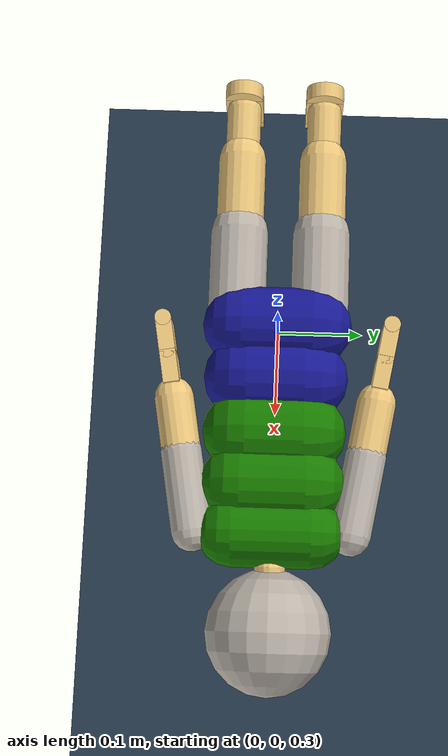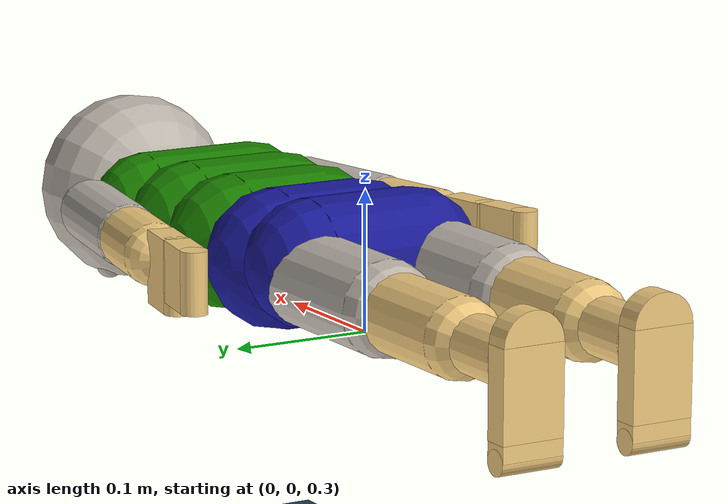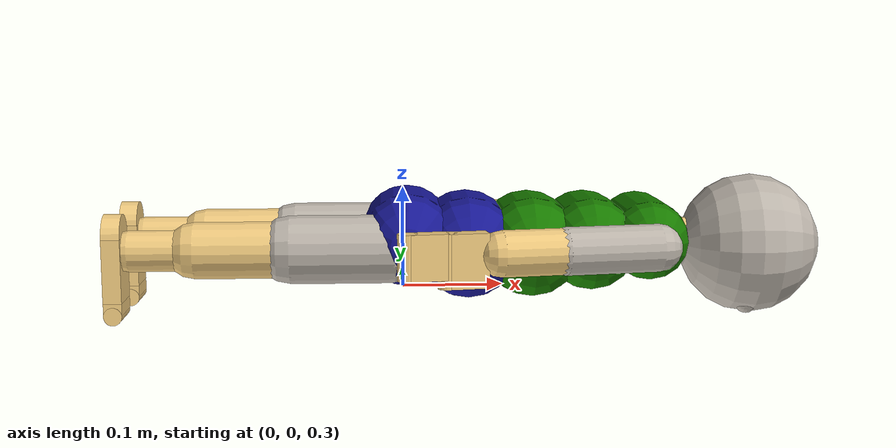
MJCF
<mujoco model="MIMo">

    <compiler inertiafromgeom="true" angle="degree"/>
    <option timestep="0.005" iterations="50" tolerance="1e-10" solver="Newton" jacobian="dense" cone="elliptic" impratio="1.0"/>
    <size nconmax="1000" njmax="5000" nstack="10000000" nuser_cam="3"/>

    <visual>
        <map force="0.1" zfar="30" znear="0.005"/>
        <rgba haze="0.15 0.25 0.35 1"/>
        <quality shadowsize="4096"/>
        <global offwidth="800" offheight="800"/>
    </visual>

    <asset>

        <texture type="skybox" builtin="gradient" rgb1="0.3 0.5 0.7" rgb2="0 0 0" width="512" height="512"/>

        <texture name="texplane" type="2d" builtin="checker" rgb1=".2 .3 .4" rgb2=".1 0.15 0.2" width="512" height="512" mark="cross" markrgb=".8 .8 .8"/>
        <material name="matplane" reflectance="0.3" texture="texplane" texrepeat="1 1" texuniform="true"/>

        <material name="orange" rgba="0.9 0.4 0 1" specular=".2" shininess=".8"/>

    </asset>

	<size nuser_actuator="3" />

	<default>
		<default class="mimo">
        	<joint limited="true" damping=".1" stiffness=".1" armature="0.001" solimplimit="0.98 0.99 0.001 .5 1" solreflimit="0.02 1" />
        	<geom condim="3" material="skin" friction="1 0.005 0.0002" solimp="0.95 0.99 0.001 0.5 1" solref="0.005 1" />
        	<motor ctrlrange="-1 1" ctrllimited="true" forcelimited="true" />
		</default>
    </default>

    <asset>

		<texture name="tex_head_default" type="cube" fileright="tex/head_front.png" fileleft="tex/head_back.png" fileup="tex/head_left.png" filedown="tex/head_right.png" filefront="tex/head_top.png" rgb1="0.95 .8 .5" />
		<texture name="tex_head_happy" type="cube" fileright="tex/head_front_happy.png" fileleft="tex/head_back.png" fileup="tex/head_left.png" filedown="tex/head_right.png" filefront="tex/head_top.png" rgb1="0.95 .8 .5" />
		<texture name="tex_head_sad" type="cube" fileright="tex/head_front_sad.png" fileleft="tex/head_back.png" fileup="tex/head_left.png" filedown="tex/head_right.png" filefront="tex/head_top.png" rgb1="0.95 .8 .5" />
		<texture name="tex_head_surprised" type="cube" fileright="tex/head_front_surprised.png" fileleft="tex/head_back.png" fileup="tex/head_left.png" filedown="tex/head_right.png" filefront="tex/head_top.png" rgb1="0.95 .8 .5" />
		<texture name="tex_head_angry" type="cube" fileright="tex/head_front_angry.png" fileleft="tex/head_back.png" fileup="tex/head_left.png" filedown="tex/head_right.png" filefront="tex/head_top.png" rgb1="0.95 .8 .5" />
		<texture name="tex_head_disgusted" type="cube" fileright="tex/head_front_disgusted.png" fileleft="tex/head_back.png" fileup="tex/head_left.png" filedown="tex/head_right.png" filefront="tex/head_top.png" rgb1="0.95 .8 .5" />
		<texture name="tex_head_scared" type="cube" fileright="tex/head_front_scared.png" fileleft="tex/head_back.png" fileup="tex/head_left.png" filedown="tex/head_right.png" filefront="tex/head_top.png" rgb1="0.95 .8 .5" />
		<texture name="tex_top_sleeve" type="cube" fileright="tex/sleeve_right.png" fileleft="tex/sleeve_left.png" fileup="tex/sleeve_up.png" filedown="tex/sleeve_down.png" filefront="tex/sleeve_front.png" fileback="tex/sleeve_back.png" rgb1="0.95 .8 .5" />
		<texture name="tex_pants_leg" type="cube" fileright="tex/leg_right.png" fileleft="tex/leg_left.png" fileup="tex/leg_up.png" filedown="tex/leg_down.png" filefront="tex/leg_front.png" fileback="tex/leg_back.png" rgb1="0.95 .8 .5" />
		<texture name="tex_eye_left" type="cube" fileright="tex/eye_pupil_left.png" rgb1="1 1 1" />
		<texture name="tex_eye_right" type="cube" fileright="tex/eye_pupil_right.png" rgb1="1 1 1" />

		<material name="skin" rgba="0.95 0.8 0.5 1" specular=".15" shininess=".7" />
		<material name="buttons" rgba=".05 .05 .05 1" specular=".9" shininess=".9" />
		<material name="head" texture="tex_head_default" texuniform="true" specular=".0" shininess=".0" />
		<material name="top_up" rgba=".1 .5 0.0 1" specular=".0" shininess=".0" />
		<material name="top_middle" rgba=".1 .5 0.0 1" specular=".0" shininess=".0" />
		<material name="top_down" rgba=".1 .5 0.0 1" specular=".0" shininess=".0" />
		<material name="top_sleeve" texture="tex_top_sleeve" texuniform="true" specular=".0" shininess=".0" />
		<material name="pants_up" rgba="0.1 0.1 0.6 1" specular=".0" shininess=".0" />
		<material name="pants_down" rgba="0.1 0.1 0.6 1" specular=".0" shininess=".0" />
		<material name="pants_leg" texture="tex_pants_leg" texuniform="true" specular=".0" shininess=".0" />
		<material name="eye_left" texture="tex_eye_left" texuniform="true" specular=".0" shininess=".0" />
		<material name="eye_right" texture="tex_eye_right" texuniform="true" specular=".0" shininess=".0" />

    </asset>

	<contact>
		<pair geom1="lb" geom2="ub1" condim="1" />
		<exclude body1="left_eye" body2="upper_body" />
		<exclude body1="right_eye" body2="upper_body" />
	</contact>

	<tendon>
		<fixed class="mimo" name="hip_bend" limited="true" range="-.01 .01">
			<joint joint="robot:hip_bend1" coef="1" />
			<joint joint="robot:hip_bend2" coef="-1" />
		</fixed>
		<fixed class="mimo" name="hip_rotation" limited="true" range="-.01 .01">
			<joint joint="robot:hip_rot1" coef="1" />
			<joint joint="robot:hip_rot2" coef="-1" />
		</fixed>
		<fixed class="mimo" name="hip_lean" limited="true" range="-.01 .01">
			<joint joint="robot:hip_lean1" coef="1" />
			<joint joint="robot:hip_lean2" coef="-.5" />
		</fixed>
		<fixed class="mimo" name="head_limits1" limited="true" range="-2.1 2.1">
			<joint joint="robot:head_swivel" coef="1" />
			<joint joint="robot:head_tilt_side" coef="1" />
		</fixed>
		<fixed class="mimo" name="head_limits2" limited="true" range="-2.1 2.1">
			<joint joint="robot:head_tilt" coef="1" />
			<joint joint="robot:head_tilt_side" coef="1" />
		</fixed>
		<fixed class="mimo" name="head_limits3" limited="true" range="-2.1 2.1">
			<joint joint="robot:head_swivel" coef="1" />
			<joint joint="robot:head_tilt" coef="1" />
		</fixed>
		<fixed class="mimo" name="head_limits1_sym" limited="true" range="-2.1 2.1">
			<joint joint="robot:head_swivel" coef="1" />
			<joint joint="robot:head_tilt_side" coef="-1" />
		</fixed>
		<fixed class="mimo" name="head_limits2_sym" limited="true" range="-2.1 2.1">
			<joint joint="robot:head_tilt" coef="1" />
			<joint joint="robot:head_tilt_side" coef="-1" />
		</fixed>
		<fixed class="mimo" name="head_limits3_sym" limited="true" range="-2.1 2.1">
			<joint joint="robot:head_swivel" coef="1" />
			<joint joint="robot:head_tilt" coef="-1" />
		</fixed>
	</tendon>

	<sensor>
		<accelerometer name="vestibular_acc" site="vestibular" />
		<gyro name="vestibular_gyro" site="vestibular" />

		<torque name="proprio:neck" site="torque_neck" />
		<torque name="proprio:left_eye" site="torque_left_eye" />
		<torque name="proprio:right_eye" site="torque_right_eye" />

		<torque name="proprio:chest" site="torque_chest" />
		<torque name="proprio:trunk_upper" site="torque_ub" />
		<torque name="proprio:trunk_lower" site="torque_lb" />

		<torque name="proprio:right_shoulder" site="torque_right_shoulder" />
		<torque name="proprio:right_elbow" site="torque_right_elbow" />
		<torque name="proprio:right_wrist" site="torque_right_wrist" />
		<torque name="proprio:right_fingers" site="torque_right_fingers" />

		<torque name="proprio:left_shoulder" site="torque_left_shoulder" />
		<torque name="proprio:left_elbow" site="torque_left_elbow" />
		<torque name="proprio:left_wrist" site="torque_left_wrist" />
		<torque name="proprio:left_fingers" site="torque_left_fingers" />

		<torque name="proprio:right_hip" site="torque_right_hip" />
		<torque name="proprio:right_knee" site="torque_right_knee" />
		<torque name="proprio:right_ankle" site="torque_right_ankle" />
		<torque name="proprio:right_toes" site="torque_right_toes" />

		<torque name="proprio:left_hip" site="torque_left_hip" />
		<torque name="proprio:left_knee" site="torque_left_knee" />
		<torque name="proprio:left_ankle" site="torque_left_ankle" />
		<torque name="proprio:left_toes" site="torque_left_toes" />

		<framelinvel name="kobayashi:left_wrist" objtype="site" objname="KOBAYASHI_LWrist" />
		<framelinvel name="kobayashi:right_wrist" objtype="site" objname="KOBAYASHI_RWrist" />
		<framelinvel name="kobayashi:left_ankle" objtype="site" objname="KOBAYASHI_LAnkle" />
		<framelinvel name="kobayashi:right_ankle" objtype="site" objname="KOBAYASHI_RAnkle" />
		<framelinvel name="kobayashi:torso" objtype="site" objname="KOBAYASHI_Torso" />
	</sensor>

  <actuator>
		<motor class="mimo" name="act:hip_bend" joint="robot:hip_bend1" gear="8.925569584863874" forcerange="-1 .765" user=".8574 32.93 22.97" />
		<motor class="mimo" name="act:hip_twist" joint="robot:hip_rot1" gear="3.0623646118200245" forcerange="-1 1" user="1.699 8.136 8.136" />
		<motor class="mimo" name="act:hip_lean" joint="robot:hip_lean1" gear="6.116292957491784" forcerange="-1 1" user="1.278 1.264 1.264" />

		<motor class="mimo" name="act:chest_twist" joint="robot:chest_rot" gear="0.30370558133752307" forcerange="-1 1" user="1.699 8.136 8.136" />
		<motor class="mimo" name="act:chest_lean" joint="robot:chest_lean" gear="0.6074111626750461" forcerange="-1 1" user="1.278 1.264 1.264" />

		<motor class="mimo" name="act:head_swivel" joint="robot:head_swivel" gear="1.5992677253147953" forcerange="-1 1" user=".6665 24.87 24.87" />
		<motor class="mimo" name="act:head_tilt" joint="robot:head_tilt" gear="2.931990829743791" forcerange="-1 .55" user=".9338 31.39 16.86" />
		<motor class="mimo" name="act:head_tilt_side" joint="robot:head_tilt_side" gear="1.5992677253147953" forcerange="-1 1" user="1.068 15.69 15.69" />

		<motor class="mimo" name="act:left_eye_horizontal" joint="robot:left_eye_horizontal" gear="0.0047978031759443865" forcerange="-1 1" user="5.110 .03025 .03025" />
		<motor class="mimo" name="act:left_eye_vertical" joint="robot:left_eye_vertical" gear="0.0047978031759443865" forcerange="-1 1" user="6.179 .02619 .02771" />
		<motor class="mimo" name="act:left_eye_torsional" joint="robot:left_eye_torsional" gear="0.003287383657591524" forcerange="-1 1" user="25.03 .003686 .003686" />
		<motor class="mimo" name="act:right_eye_horizontal" joint="robot:right_eye_horizontal" gear="0.0047978031759443865" forcerange="-1 1" user="5.110 .03025 .03025" />
		<motor class="mimo" name="act:right_eye_vertical" joint="robot:right_eye_vertical" gear="0.0047978031759443865" forcerange="-1 1" user="6.179 .02619 .02771" />
		<motor class="mimo" name="act:right_eye_torsional" joint="robot:right_eye_torsional" gear="0.003287383657591524" forcerange="-1 1" user="25.03 .003686 .003686" />

		<motor class="mimo" name="act:right_shoulder_horizontal" joint="robot:right_shoulder_horizontal" gear="1.4946380409692916" forcerange="-1 1" user="1.811 18.80 15.30" />
		<motor class="mimo" name="act:right_shoulder_abduction" joint="robot:right_shoulder_ad_ab" gear="3.321417868820648" forcerange="-.6875 1" user=".8793 44.17 69.23" />
		<motor class="mimo" name="act:right_shoulder_internal" joint="robot:right_shoulder_rotation" gear="2.075886168012905" forcerange="-1 .64" user="1.498 25.09 17.10" />
		<motor class="mimo" name="act:right_elbow" joint="robot:right_elbow" gear="2.992251283410243" forcerange="-1 .83" user="1.566 35.43 27.04" />
		<motor class="mimo" name="act:right_wrist_rotation" joint="robot:right_hand1" gear="0.5473945657339708" forcerange="-1 1" user="1.513 7.842 7.842" />
		<motor class="mimo" name="act:right_wrist_flexion" joint="robot:right_hand2" gear="0.9696703735858913" forcerange="-1 .57" user="1.455 13.66 7.874" />
		<motor class="mimo" name="act:right_wrist_ulnar" joint="robot:right_hand3" gear="0.7428926249246747" forcerange="-.87 1" user="2.254 5.155 6.021" />
		<motor class="mimo" name="act:right_fingers" joint="robot:right_fingers" gear="0.5395746433663428" forcerange="-1 .33" user="3.019 6.854 2.551" />

		<motor class="mimo" name="act:left_shoulder_horizontal" joint="robot:left_shoulder_horizontal" gear="1.4946380409692916" forcerange="-1 1" user="1.811 18.80 15.30" />
		<motor class="mimo" name="act:left_shoulder_abduction" joint="robot:left_shoulder_ad_ab" gear="3.321417868820648" forcerange="-.6875 1" user=".8793 44.17 69.23" />
		<motor class="mimo" name="act:left_shoulder_internal" joint="robot:left_shoulder_rotation" gear="2.075886168012905" forcerange="-1 .64" user="1.498 25.09 17.10" />
		<motor class="mimo" name="act:left_elbow" joint="robot:left_elbow" gear="2.992251283410243" forcerange="-1 .83" user="1.566 35.43 27.04" />
		<motor class="mimo" name="act:left_wrist_rotation" joint="robot:left_hand1" gear="0.5473945657339708" forcerange="-1 1" user="1.513 7.842 7.842" />
		<motor class="mimo" name="act:left_wrist_flexion" joint="robot:left_hand2" gear="0.9696703735858913" forcerange="-1 .57" user="1.455 13.66 7.874" />
		<motor class="mimo" name="act:left_wrist_ulnar" joint="robot:left_hand3" gear="0.7428926249246747" forcerange="-.87 1" user="2.254 5.155 6.021" />
		<motor class="mimo" name="act:left_fingers" joint="robot:left_fingers" gear="0.5395746433663428" forcerange="-1 .33" user="3.019 6.854 2.551" />

		<motor class="mimo" name="act:right_hip_flex" joint="robot:right_hip1" gear="5.498225394021425" forcerange="-1 1" user="1.083 71.25 92.49" />
		<motor class="mimo" name="act:right_hip_abduction" joint="robot:right_hip2" gear="4.288615807336711" forcerange="-1 1" user="1.488 24.81 29.20" />
		<motor class="mimo" name="act:right_hip_rotation" joint="robot:right_hip3" gear="2.4329647368544802" forcerange="-.75 1" user="1.860 12.32 15.78" />
		<motor class="mimo" name="act:right_knee" joint="robot:right_knee" gear="8.271842647359389" forcerange="-.65 1" user="1.450 63.16 89.27" />
		<motor class="mimo" name="act:right_foot_flexion" joint="robot:right_foot1" gear="2.619256632754411" forcerange="-1 .5" user="1.430 21.34 11.87" />
		<motor class="mimo" name="act:right_foot_inversion" joint="robot:right_foot2" gear="0.8037930407394489" forcerange="-.91 1" user="1.988 4.184 4.645" />
		<motor class="mimo" name="act:right_foot_rotation" joint="robot:right_foot3" gear="0.8315100421442576" forcerange="-1 1" user="2.688 3.868 3.625" />
		<motor class="mimo" name="act:right_toes" joint="robot:right_toes" gear="0.22866526158967082" forcerange="-1 .3" user="1.290 2.947 .8440" />

		<motor class="mimo" name="act:left_hip_flex" joint="robot:left_hip1" gear="5.498225394021425" forcerange="-1 1" user="1.083 71.25 92.49" />
		<motor class="mimo" name="act:left_hip_abduction" joint="robot:left_hip2" gear="4.288615807336711" forcerange="-1 1" user="1.488 24.81 29.20" />
		<motor class="mimo" name="act:left_hip_rotation" joint="robot:left_hip3" gear="2.4329647368544802" forcerange="-.75 1" user="1.860 12.32 15.78" />
		<motor class="mimo" name="act:left_knee" joint="robot:left_knee" gear="8.271842647359389" forcerange="-.65 1" user="1.450 63.16 89.27" />
		<motor class="mimo" name="act:left_foot_flexion" joint="robot:left_foot1" gear="2.619256632754411" forcerange="-1 .5" user="1.430 21.34 11.87" />
		<motor class="mimo" name="act:left_foot_inversion" joint="robot:left_foot2" gear="0.8037930407394489" forcerange="-.91 1" user="1.988 4.184 4.645" />
		<motor class="mimo" name="act:left_foot_rotation" joint="robot:left_foot3" gear="0.8315100421442576" forcerange="-1 1" user="2.688 3.868 3.625" />
		<motor class="mimo" name="act:left_toes" joint="robot:left_toes" gear="0.22866526158967082" forcerange="-1 .3" user="1.290 2.947 .8440" />
	</actuator>

	<equality>
		<joint name="robot:hip_lean1" joint1="robot:hip_lean1" active="false" polycoef="0 1 0 0 0" />
		<joint name="robot:hip_rot1" joint1="robot:hip_rot1" active="false" polycoef="0 1 0 0 0" />
		<joint name="robot:hip_bend1" joint1="robot:hip_bend1" active="false" polycoef="0 1 0 0 0" />
		<joint name="robot:hip_lean2" joint1="robot:hip_lean2" active="false" polycoef="0 1 0 0 0" />
		<joint name="robot:hip_rot2" joint1="robot:hip_rot2" active="false" polycoef="0 1 0 0 0" />
		<joint name="robot:hip_bend2" joint1="robot:hip_bend2" active="false" polycoef="0 1 0 0 0" />
		<joint name="robot:head_swivel" joint1="robot:head_swivel" active="false" polycoef="0 1 0 0 0" />
		<joint name="robot:head_tilt" joint1="robot:head_tilt" active="false" polycoef="0 1 0 0 0" />
		<joint name="robot:head_tilt_side" joint1="robot:head_tilt_side" active="false" polycoef="0 1 0 0 0" />
		<joint name="robot:left_eye_horizontal" joint1="robot:left_eye_horizontal" active="false" polycoef="0 1 0 0 0" />
		<joint name="robot:left_eye_vertical" joint1="robot:left_eye_vertical" active="false" polycoef="0 1 0 0 0" />
		<joint name="robot:left_eye_torsional" joint1="robot:left_eye_torsional" active="false" polycoef="0 1 0 0 0" />
		<joint name="robot:right_eye_horizontal" joint1="robot:right_eye_horizontal" active="false" polycoef="0 1 0 0 0" />
		<joint name="robot:right_eye_vertical" joint1="robot:right_eye_vertical" active="false" polycoef="0 1 0 0 0" />
		<joint name="robot:right_eye_torsional" joint1="robot:right_eye_torsional" active="false" polycoef="0 1 0 0 0" />
		<joint name="robot:right_shoulder_horizontal" joint1="robot:right_shoulder_horizontal" active="false" polycoef="0 1 0 0 0" />
		<joint name="robot:right_shoulder_ad_ab" joint1="robot:right_shoulder_ad_ab" active="false" polycoef="0 1 0 0 0" />
		<joint name="robot:right_shoulder_rotation" joint1="robot:right_shoulder_rotation" active="false" polycoef="0 1 0 0 0" />
		<joint name="robot:right_elbow" joint1="robot:right_elbow" active="false" polycoef="0 1 0 0 0" />
		<joint name="robot:right_hand1" joint1="robot:right_hand1" active="false" polycoef="0 1 0 0 0" />
		<joint name="robot:right_hand2" joint1="robot:right_hand2" active="false" polycoef="0 1 0 0 0" />
		<joint name="robot:right_hand3" joint1="robot:right_hand3" active="false" polycoef="0 1 0 0 0" />
		<joint name="robot:right_fingers" joint1="robot:right_fingers" active="false" polycoef="0 1 0 0 0" />
		<joint name="robot:left_shoulder_horizontal" joint1="robot:left_shoulder_horizontal" active="false" polycoef="0 1 0 0 0" />
		<joint name="robot:left_shoulder_ad_ab" joint1="robot:left_shoulder_ad_ab" active="false" polycoef="0 1 0 0 0" />
		<joint name="robot:left_shoulder_rotation" joint1="robot:left_shoulder_rotation" active="false" polycoef="0 1 0 0 0" />
		<joint name="robot:left_elbow" joint1="robot:left_elbow" active="false" polycoef="0 1 0 0 0" />
		<joint name="robot:left_hand1" joint1="robot:left_hand1" active="false" polycoef="0 1 0 0 0" />
		<joint name="robot:left_hand2" joint1="robot:left_hand2" active="false" polycoef="0 1 0 0 0" />
		<joint name="robot:left_hand3" joint1="robot:left_hand3" active="false" polycoef="0 1 0 0 0" />
		<joint name="robot:left_fingers" joint1="robot:left_fingers" active="false" polycoef="0 1 0 0 0" />
		<joint name="robot:right_hip1" joint1="robot:right_hip1" active="false" polycoef="0 1 0 0 0" />
		<joint name="robot:right_hip2" joint1="robot:right_hip2" active="false" polycoef="0 1 0 0 0" />
		<joint name="robot:right_hip3" joint1="robot:right_hip3" active="false" polycoef="0 1 0 0 0" />
		<joint name="robot:right_knee" joint1="robot:right_knee" active="false" polycoef="0 1 0 0 0" />
		<joint name="robot:right_foot1" joint1="robot:right_foot1" active="false" polycoef="0 1 0 0 0" />
		<joint name="robot:right_foot2" joint1="robot:right_foot2" active="false" polycoef="0 1 0 0 0" />
		<joint name="robot:right_foot3" joint1="robot:right_foot3" active="false" polycoef="0 1 0 0 0" />
		<joint name="robot:right_toes" joint1="robot:right_toes" active="false" polycoef="0 1 0 0 0" />
		<joint name="robot:left_hip1" joint1="robot:left_hip1" active="false" polycoef="0 1 0 0 0" />
		<joint name="robot:left_hip2" joint1="robot:left_hip2" active="false" polycoef="0 1 0 0 0" />
		<joint name="robot:left_hip3" joint1="robot:left_hip3" active="false" polycoef="0 1 0 0 0" />
		<joint name="robot:left_knee" joint1="robot:left_knee" active="false" polycoef="0 1 0 0 0" />
		<joint name="robot:left_foot1" joint1="robot:left_foot1" active="false" polycoef="0 1 0 0 0" />
		<joint name="robot:left_foot2" joint1="robot:left_foot2" active="false" polycoef="0 1 0 0 0" />
		<joint name="robot:left_foot3" joint1="robot:left_foot3" active="false" polycoef="0 1 0 0 0" />
		<joint name="robot:left_toes" joint1="robot:left_toes" active="false" polycoef="0 1 0 0 0" />
	</equality>

    <equality>
        <weld body1="left_eye" body2="head"/>
        <weld body1="right_eye" body2="head"/>
    </equality>

    <worldbody>

        <geom name="floor" pos="0 0 0" size="0 0 .25" type="plane" material="matplane" condim="3"/>

        <light directional="false" diffuse=".4 .4 .4" specular="0 0 0" pos="0 0 10" dir="0 0 -1" castshadow="false"/>
        <light mode="targetbodycom" target="upper_body" directional="false" diffuse=".75 .75 .75" specular="0.3 0.3 0.3" pos="3 0 5" dir="0 0 -1"/>

        <body name="mimo_location" pos="0 0 0.35" euler="0 90 0">
            <freejoint name="mimo_location"/>

	<body childclass="mimo" name="hip" pos="0 0 0">

		<geom name="lb" type="capsule" size="0.0453549467646683 0.04063047314334869 0.0" mass="0.9772570706149627" material="pants_down" pos="-0.002 0.0 0.0047244736213196145" euler="90 0 0" />
		<site name="lowerBody_center" type="sphere" size=".01 .01 .01" pos="0 0 0" />
		<site name="BODY_25:MidHip" type="sphere" size=".005" pos="0.005 0.0 -0.007" rgba="0 0 0 1" />
		<body name="lower_body" pos="0.002 0.0 0.07181199904405815">
			<joint name="robot:hip_lean1" type="hinge" pos="0.0 0.0 -0.05007942038598792" axis="1 0 0" range="-14 14" stiffness="3.38" damping="0.77" frictionloss=".049" armature="0.01" />
			<joint name="robot:hip_rot1" type="hinge" pos="0.0 0.0 -0.05007942038598792" axis="0 0 1" range="-18 18" stiffness="1.45" damping="0.29" frictionloss=".018" armature="0.01" />
			<joint name="robot:hip_bend1" type="hinge" pos="0.0 0.0 -0.05007942038598792" axis="0 1 0" range="-17 30.5" stiffness="2.20" damping="0.84" frictionloss="0.040" armature="0.01" />
			<site name="torque_lb" type="sphere" size="0.01" pos="0 0 0" group="4" />
			<geom name="cb" type="capsule" size="0.05007942038598792 0.03307131534923731 0.0" mass="1.117383451337637" material="pants_up" contype="0" pos="0.005 0.0 -0.007559157794111384" euler="90 0 0" />

			<body name="upper_body" pos="-0.002 0.0 0.085985419908017">

				<site name="KOBAYASHI_Torso" type="sphere" size="0.01" pos=".04913452566172399 0 0.04913452566172399" rgba="1 0 0 0" />
				<joint name="robot:hip_lean2" type="hinge" pos="0.0 0.0 -0.04913452566172399" axis="1 0 0" range="-27 27" stiffness="1.69" damping="0.38" frictionloss=".024" armature="0.01" />
				<joint name="robot:hip_rot2" type="hinge" pos="0.0 0.0 -0.04913452566172399" axis="0 0 1" range="-18 18" stiffness="1.45" damping="0.29" frictionloss=".018" armature="0.01" />
				<joint name="robot:hip_bend2" type="hinge" pos="0.0 0.0 -0.04913452566172399" axis="0 1 0" range="-17 30.5" stiffness="2.20" damping="0.84" frictionloss="0.040" armature="0.01" />
				<site name="torque_ub" type="sphere" size="0.01" pos="0 0 0" group="4" />
				<geom name="ub1" type="capsule" size="0.04913452566172399 0.033071315349237296 0.0" mass="0.9180344822541459" material="top_down" pos="0.007 0.0 -0.030236631176445535" euler="90 0 0" />
				<geom name="ub2" type="capsule" size="0.04535494676466831 0.03685089424629298 0.0" mass="0.8013609214236473" material="top_middle" pos="0.004 0.0 0.028346841727917692" euler="90 0 0" />
				<geom name="neck" type="capsule" size="0.017664861511447964 1e-06 0.0" mass="0.0" material="skin" pos="0.0 0.0 0.12378220887857393" euler="0 0 0" />

				<body name="chest" pos="0.0 0.0 0.08504052518375307">
					<site name="BODY_25:Neck" type="sphere" size=".005 .005 .005" pos="0.0 0.0 0.0" rgba="0 0 0 1" />
					<joint name="robot:chest_lean" type="hinge" pos="0 0 0" axis="1 0 0" range="-9 9" stiffness="1.69" damping="0.38" frictionloss=".024" armature="0.01" />
					<joint name="robot:chest_rot" type="hinge" pos="0 0 0" axis="0 0 1" range="-18 18" stiffness="1.45" damping="0.29" frictionloss=".018" armature="0.01" />
					<site name="torque_chest" type="sphere" size="0.01" pos="0 0 0" group="4" />
					<geom name="ub3" type="capsule" size="0.03874068369482085 0.04441005204040438 0.0" mass="0.6088453279202511" material="top_up" pos="0 0 0" euler="90 0 0" />

					<body name="right_upper_arm" pos="0.0 -0.08895327414699686 0.0" euler="170 0 0">

						<site name="BODY_25:RShoulder" type="sphere" size=".005 .005 .005" pos="0.0 0.0 0.0" rgba="0 0 0 1" />
						<joint name="robot:right_shoulder_horizontal" type="hinge" pos="0 0 0" axis="0 1 -4" range="-28 118" stiffness=".09" damping=".05" frictionloss=".0009" armature="0.004" />
						<joint name="robot:right_shoulder_ad_ab" type="hinge" pos="0 0 0" axis="-1 0 0" range="-84 183" stiffness=".11" damping=".10" frictionloss=".0014" armature="0.004" />
						<joint name="robot:right_shoulder_rotation" type="hinge" pos="0 0 0" axis="0 0 -1" range="-99 67" stiffness=".12" damping=".07" frictionloss=".0008" armature="0.004" />
						<site name="torque_right_shoulder" type="sphere" size="0.01" pos="0 0 0" group="4" />
						<geom name="right_uarm1" type="capsule" material="top_sleeve" size="0.023210153647086482 0.04631955545438238 0.0" mass="0.2228671389978655" pos="0.0 0.0 0.04631955545438238" euler="0 0 0" />
						<body name="right_lower_arm" pos="0.0 -0.0 0.09263911090876475" euler="0 0 0">

							<site name="KOBAYASHI_RWrist" type="sphere" size=".01" pos="0 0.0244 .0606" rgba="1 0 0 0" />
							<site name="BODY_25:RElbow" type="sphere" size=".005 .005 .005" pos="0.0 0.0 0.0" rgba="0 0 0 1" />
							<joint name="robot:right_elbow" type="hinge" pos="0 0 0" axis="0 -1 0" springref="-20" range="-146 5" stiffness=".13" damping=".11" frictionloss=".030" armature="0.002" />
							<site name="torque_right_elbow" type="sphere" size="0.01" pos="0 0 0" group="4" />
							<geom name="right_larm" type="capsule" size="0.0223698041779282 0.031070640478344663 0.0" mass="0.15401782300442166" pos="0.0 0.0 0.031070640478344663" />
							<body name="right_hand" pos="0.0 -0.0 0.0757986021310487" euler="0 0 0">
								<site name="BODY_25:RWrist" type="sphere" size=".005 .005 .005" pos="0.0 0.0 0.0" />
								<joint name="robot:right_hand1" type="hinge" pos="0 0 0" axis="0 0 -1" springref="-20" range="-90 90" stiffness=".22" damping=".03" frictionloss=".007" armature="0.001" />
								<joint name="robot:right_hand2" type="hinge" pos="0 0 0" axis="-1 0 0" range="-92 86" stiffness=".33" damping=".11" frictionloss=".007" armature="0.001" />
								<joint name="robot:right_hand3" type="hinge" pos="0 0 0" axis="0 1 0" range="-53 48" stiffness=".38" damping=".11" frictionloss=".007" armature="0.001" />
								<site name="torque_right_wrist" type="sphere" size="0.01" pos="0 0 0" group="4" />
								<geom name="geom:right_hand1" type="box" size="0.025902175715164507 0.00927483447739742 0.019025219826365198" mass="0.03374296501631549" pos="0.00463741723869871 0.0 0.019025219826365198" />
								<geom name="geom:right_hand2" type="cylinder" size="0.00947483447739742 0.025902175715164507 0.0" mass="0.012879437054996938" pos="0.00463741723869871 0.0 0.038050439652730396" euler="0 90 0" />
								<body name="right_fingers" pos="0.0 -0.0 0.038050439652730396">
									<joint name="robot:right_fingers" type="hinge" pos="0 0 0" axis="-1 0 0" springref="-40" range="-160 8" stiffness=".017" damping=".018" frictionloss=".0023" armature="0.0001" />
									<site name="torque_right_fingers" type="sphere" size="0.01" pos="0 0 0" group="4" />
									<geom name="geom:right_fingers1" type="box" size="0.021727757217624474 0.00927483447739742 0.018933752423353826" mass="0.028247204223794942" pos="0.0 0.0 0.018933752423353826" friction="5 0.02 0.01" />
									<geom name="geom:right_fingers2" type="cylinder" size="0.00947483447739742 0.021927757217624473 0.0" mass="0.010883514047452084" pos="0.0 0.0 0.03786750484670765" euler="0 90 0" friction="5 0.02 0.01" />
								</body>
							</body>
						</body>
					</body>

					<body name="left_upper_arm" pos="0.0 0.08895327414699686 0.0" euler="-170 0 0">

						<site name="BODY_25:LShoulder" type="sphere" size=".005 .005 .005" pos="0.0 0.0 0.0" rgba="0 0 0 1" />
						<joint name="robot:left_shoulder_horizontal" type="hinge" pos="0 0 0" axis="0 1 4" range="-28 118" stiffness=".09" damping=".05" frictionloss=".0009" armature="0.004" />
						<joint name="robot:left_shoulder_ad_ab" type="hinge" pos="0 0 0" axis="1 0 0" range="-84 183" stiffness=".11" damping=".10" frictionloss=".0014" armature="0.004" />
						<joint name="robot:left_shoulder_rotation" type="hinge" pos="0 0 0" axis="0 0 1" range="-99 67" stiffness=".12" damping=".07" frictionloss=".0008" armature="0.004" />
						<site name="torque_left_shoulder" type="sphere" size="0.01" pos="0 0 0" group="4" />
						<geom name="left_uarm1" type="capsule" material="top_sleeve" size="0.023210153647086482 0.04631955545438238 0.0" mass="0.2228671389978655" pos="0.0 0.0 0.04631955545438238" euler="0 0 0" />
						<body name="left_lower_arm" pos="0.0 0.0 0.09263911090876475" euler="0 0 0">

							<site name="KOBAYASHI_LWrist" type="sphere" size=".01" pos="0 -0.0244 .0606" rgba="1 0 0 0" />
							<site name="BODY_25:LElbow" type="sphere" size=".005 .005 .005" pos="0.0 0.0 0.0" rgba="0 0 0 1" />
							<joint name="robot:left_elbow" type="hinge" pos="0 0 0" axis="0 -1 0" springref="-20" range="-146 5" stiffness=".13" damping=".11" frictionloss=".030" armature="0.002" />
							<site name="torque_left_elbow" type="sphere" size="0.01" pos="0 0 0" group="4" />
							<geom name="left_larm" type="capsule" size="0.0223698041779282 0.031070640478344663 0.0" mass="0.15401782300442166" pos="0.0 0.0 0.031070640478344663" />
							<body name="left_hand" pos="0.0 0.0 0.0757986021310487" euler="0 0 0">
								<site name="BODY_25:LWrist" type="sphere" size=".005 .005 .005" pos="0.0 0.0 0.0" rgba="0 0 0 1" />
								<joint name="robot:left_hand1" type="hinge" pos="0 0 0" axis="0 0 1" springref="-20" range="-90 90" stiffness=".22" damping=".03" frictionloss=".007" armature="0.001" />
								<joint name="robot:left_hand2" type="hinge" pos="0 0 0" axis="1 0 0" range="-92 86" stiffness=".33" damping=".11" frictionloss=".007" armature="0.001" />
								<joint name="robot:left_hand3" type="hinge" pos="0 0 0" axis="0 1 0" range="-53 48" stiffness=".38" damping=".11" frictionloss=".007" armature="0.001" />
								<site name="torque_left_wrist" type="sphere" size="0.01" pos="0 0 0" group="4" />
								<geom name="geom:left_hand1" type="box" size="0.025902175715164507 0.00927483447739742 0.019025219826365198" mass="0.03374296501631549" pos="0.00463741723869871 0.0 0.019025219826365198" />
								<geom name="geom:left_hand2" type="cylinder" size="0.00947483447739742 0.025902175715164507 0.0" mass="0.012879437054996938" pos="0.00463741723869871 0.0 0.038050439652730396" euler="0 90 0" />
								<body name="left_fingers" pos="0.0 0.0 0.038050439652730396">
									<joint name="robot:left_fingers" type="hinge" pos="0 0 0" axis="1 0 0" springref="-40" range="-160 8" stiffness=".017" damping=".018" frictionloss=".0023" armature="0.0001" />
									<site name="torque_left_fingers" type="sphere" size="0.01" pos="0 0 0" group="4" />
									<geom name="geom:left_fingers1" type="box" size="0.021727757217624474 0.00927483447739742 0.018933752423353826" mass="0.028247204223794942" pos="0.0 0.0 0.018933752423353826" friction="5 0.02 0.01" />
									<geom name="geom:left_fingers2" type="cylinder" size="0.00947483447739742 0.021927757217624473 0.0" mass="0.010883514047452084" pos="0.0 0.0 0.03786750484670765" euler="0 90 0" friction="5 0.02 0.01" />
								</body>
							</body>
						</body>
					</body>
				</body>
				<body name="head" pos="0.0 0.0 0.12378320887857393">
					<geom name="head" type="sphere" size="0.07065944604579186 0.0 0.0" mass="1.576877977160388" material="head" pos="0.009613530074257396 0.0 0.07065944604579186" />
					<site name="vestibular" type="sphere" size="0.01" pos="0.01 0.0 0.07065944604579186" group="4" />
					<site name="torque_neck" type="sphere" size="0.01" pos="0 0 0" group="4" />
					<joint name="robot:head_swivel" type="hinge" pos="0 0 0" axis="0 0 1" range="-111 111" stiffness=".23" damping=".29" frictionloss=".018" armature="0.005" />
					<joint name="robot:head_tilt" type="hinge" pos="0.0 0.0 0.011776574340965311" axis="0 1 0" range="-70 81" stiffness=".45" damping=".53" frictionloss=".018" armature="0.005" />
					<joint name="robot:head_tilt_side" type="hinge" pos="0.0 0.0 0.023553148681930623" axis="1 0 0" range="-70 70" stiffness=".37" damping=".29" frictionloss=".018" armature="0.005" />
					<body name="left_eye" pos="0.06729471051980178 0.023553148681930623 0.06477115887530921">
						<site name="BODY_25:LEye" type="sphere" size=".005 .005 .005" pos="0.0 0.0 0.0" rgba="0 0 0 1" />
						<site name="torque_left_eye" type="sphere" size="0.01" pos="0 0 0" group="4" />
						<joint name="robot:left_eye_horizontal" type="hinge" pos="0 0 0" axis="0 0 1" range="-45 45" stiffness=".00065" damping=".00042" frictionloss=".000054" armature=".0002" />
						<joint name="robot:left_eye_vertical" type="hinge" pos="0 0 0" axis="0 -1 0" range="-47 33" stiffness=".00065" damping=".00042" frictionloss=".000054" armature=".0002" />
						<joint name="robot:left_eye_torsional" type="hinge" pos="0 0 0" axis="-1 0 0" range="-8 8" stiffness=".00267" damping=".00042" frictionloss=".000037" armature=".0002" />
						<geom name="geom:left_eye1" type="sphere" material="eye_left" size="0.01081522133353957 0.0 0.0" mass="0.005575224986861301" pos="0 0 0" />
						<camera name="eye_left" mode="fixed" fovy="60" pos="0.01125 0 0" euler="90 -90 0" />
					</body>
					<body name="right_eye" pos="0.06729471051980178 -0.023553148681930623 0.06477115887530921">
						<site name="BODY_25:REye" type="sphere" size=".005 .005 .005" pos="0.0 0.0 0.0" rgba="0 0 0 1" />
						<site name="torque_right_eye" type="sphere" size="0.01" pos="0 0 0" group="4" />
						<joint name="robot:right_eye_horizontal" type="hinge" pos="0 0 0" axis="0 0 -1" range="-45 45" stiffness=".00065" damping=".00042" frictionloss=".000054" armature=".0002" />
						<joint name="robot:right_eye_vertical" type="hinge" pos="0 0 0" axis="0 -1 0" range="-47 33" stiffness=".00065" damping=".00042" frictionloss=".000054" armature=".0002" />
						<joint name="robot:right_eye_torsional" type="hinge" pos="0 0 0" axis="1 0 0" range="-8 8" stiffness=".00267" damping=".00042" frictionloss=".000037" armature=".0002" />
						<geom name="geom:right_eye1" type="sphere" material="eye_right" size="0.01081522133353957 0.0 0.0" mass="0.005575224986861301" pos="0 0 0" />
						<camera name="eye_right" mode="fixed" fovy="60" pos="0.01125 0 0" euler="90 -90 0" />
					</body>
					<site name="BODY_25:Nose" type="sphere" size=".005" pos="0.06585268100866316 0.0 0.04181885582301967" rgba="0 0 0 1" />
					<site name="BODY_25:LEar" type="sphere" size=".005" pos="0.01 0.060084562964108724 0.05527779792698003" rgba="0 0 0 1" />
					<site name="BODY_25:REar" type="sphere" size=".005" pos="0.01 -0.060084562964108724 0.05527779792698003" rgba="0 0 0 1" />
				</body>
			</body>
		</body>

		<body name="right_upper_leg" pos="0.005 -0.04818963093746007 -0.007">

			<joint name="robot:right_hip1" type="hinge" pos="0 0 0" axis="0 1 0" springref="-10" range="-133 20" stiffness="1.72" damping="1.27" frictionloss=".08" armature=".005" />
			<joint name="robot:right_hip2" type="hinge" pos="0 0 0" axis="1 0 0" range="-51 17" stiffness="3.51" damping="1.99" frictionloss=".062" armature=".005" />
			<joint name="robot:right_hip3" type="hinge" pos="0 0 0" axis="0 0 -1" range="-32 41" stiffness="2.16" damping="0.75" frictionloss=".027" armature=".005" />
			<site name="torque_right_hip" type="sphere" size="0.01" pos="0 0 0" group="4" />
			<site name="BODY_25:RHip" type="sphere" size=".005 .005 .005" pos="0.0 0.0 0.0" rgba="0 0 0 1" />
			<geom name="geom:right_upper_leg1" type="capsule" material="pants_leg" contype="2" conaffinity="3" size="0.03354473623339216 0.05052176165457999 0.0" mass="0.5496850837672919" pos="0.0 0.0 -0.052138458027526556" euler="0 0 0" />
			<body name="right_lower_leg" pos="0.0 -0.0 -0.11761123412136432">

				<site name="KOBAYASHI_RAnkle" type="sphere" size=".01" pos=".020192929050055188 0 -0.1213" rgba="1 0 0 0" />
				<joint name="robot:right_knee" type="hinge" pos="0 0 0" axis="0 -1 0" springref="-30" range="-145 4" stiffness="1.63" damping="0.53" frictionloss=".065" armature=".003" />
				<site name="torque_right_knee" type="sphere" size="0.01" pos="0 0 0" group="4" />
				<site name="BODY_25:RKnee" type="sphere" size=".005 .005 .005" pos="0.0 0.0 0.0" rgba="0 0 0 1" />
				<geom name="geom:right_lower_leg1" type="capsule" size="0.02781709062904721 0.03839392678984393 0.0" mass="0.2763622628482772" pos="0.0 0.0 -0.03839392678984393" euler="0 0 0" />
				<geom name="geom:right_lower_leg2" type="capsule" size="0.020192929050055188 0.02443249886626432 0.0" mass="0.09677080952178703" pos="0.0 0.0 -0.11518178036953178" euler="0 0 0" />
				<body name="right_foot" pos="0.0 -0.0 -0.1535757071593757">
					<joint name="robot:right_foot1" type="hinge" pos="0.0 -0.0 0.013252891120895074" axis="0 -1 0" springref="-10" range="-63 32" stiffness="1.29" damping="0.6" frictionloss=".019" armature=".003" />
					<joint name="robot:right_foot2" type="hinge" pos="0.0 -0.0 0.013252891120895074" axis="1 0 0" range="-33 31" stiffness="0.96" damping="0.37" frictionloss=".011" armature=".0025" />
					<joint name="robot:right_foot3" type="hinge" pos="0.0 -0.0 0.013252891120895074" axis="0 0 1" range="-20 30" stiffness="1.15" damping="0.38" frictionloss=".012" armature=".002" />
					<site name="torque_right_ankle" type="sphere" size="0.01" pos="0 0 0" group="4" />
					<site name="BODY_25:RAnkle" type="sphere" size=".005" pos="0.0 0.0 0.013252891120895074" rgba="0 0 0 1" />
					<site name="BODY_25:RHeel" type="sphere" size=".005" pos="-0.03081790119332399 0.0 0.0" rgba="0 0 0 1" />
					<geom name="geom:right_foot1" type="cylinder" size="0.022167521285724797 0.008735260747263383 0.0" mass="0.022511126547853724" pos="-0.014088183402662395 0.0 0.0" euler="0 0 0" />
					<geom name="geom:right_foot2" type="box" size="0.03081790119332399 0.022267521285724796 0.008835260747263382" mass="0.04053611455453256" pos="0.016729717790661597 0.0 0.0" euler="0 0 0" friction="2 0.02 0.01" />
					<geom name="geom:right_foot3" type="cylinder" size="0.008735260747263383 0.022067521285724798 0.0" mass="0.0087842054362382" pos="0.04754761898398559 0.0 0.0" euler="90 0 0" friction="2 0.02 0.01" />
					<body name="right_toes" pos="0.04754761898398559 -0.0 0.0">
						<joint name="robot:right_toes" type="hinge" pos="0 0 0" axis="0 -1 0" range="-60 80" frictionloss=".005" armature=".0005" stiffness=".106" damping=".04" />
						<site name="torque_right_toes" type="sphere" size="0.01" pos="0 0 0" group="4" />
						<geom name="geom:right_toes1" type="box" size="0.006163580238664798 0.022167521285724797 0.008735260747263383" mass="0.007497608545718238" pos="0.006163580238664798 0.0 0.0" euler="0 0 0" friction="2 0.02 0.01" />
						<geom name="geom:right_toes2" type="cylinder" size="0.008835260747263382 0.022267521285724796 0.0" mass="0.008524346203326648" pos="0.012327160477329596 0.0 0.0" euler="90 0 0" friction="2 0.02 0.01" />
						<site name="BODY_25:RBigToe" type="sphere" size=".005" pos="0.009685626089330395 0.010688410217147903 0.0" rgba="0 0 0 1" />
						<site name="BODY_25:RSmallToe" type="sphere" size=".005" pos="0.008805114626663996 -0.010688410217147903 0.0" rgba="0 0 0 1" />
					</body>
				</body>
			</body>
		</body>

		<body name="left_upper_leg" pos="0.005 0.04818963093746007 -0.007">

			<site name="BODY_25:LHip" type="sphere" size=".005 .005 .005" pos="0.0 0.0 0.0" rgba="0 0 0 1" />
			<joint name="robot:left_hip1" type="hinge" pos="0 0 0" axis="0 1 0" springref="-10" range="-133 20" stiffness="1.72" damping="1.27" frictionloss=".08" armature=".005" />
			<joint name="robot:left_hip2" type="hinge" pos="0 0 0" axis="-1 0 0" range="-51 17" stiffness="3.51" damping="1.99" frictionloss=".062" armature=".005" />
			<joint name="robot:left_hip3" type="hinge" pos="0 0 0" axis="0 0 1" range="-32 41" stiffness="2.16" damping="0.75" frictionloss=".027" armature=".005" />
			<site name="torque_left_hip" type="sphere" size="0.01" pos="0 0 0" group="4" />
			<geom name="geom:left_upper_leg1" type="capsule" material="pants_leg" contype="2" conaffinity="3" size="0.03354473623339216 0.05052176165457999 0.0" mass="0.5496850837672919" pos="0.0 0.0 -0.052138458027526556" euler="0 0 0" />
			<body name="left_lower_leg" pos="0.0 0.0 -0.11761123412136432">

				<site name="KOBAYASHI_LAnkle" type="sphere" size=".01" pos=".020192929050055188 0 -0.1213" rgba="1 0 0 0" />
				<joint name="robot:left_knee" type="hinge" pos="0 0 0" axis="0 -1 0" springref="-30" range="-145 4" stiffness="1.63" damping="0.53" frictionloss=".065" armature=".003" />
				<site name="torque_left_knee" type="sphere" size="0.01" pos="0 0 0" group="4" />
				<site name="BODY_25:LKnee" type="sphere" size=".005" pos="0.0 0.0 0.0" rgba="0 0 0 1" />
				<geom name="geom:left_lower_leg1" type="capsule" size="0.02781709062904721 0.03839392678984393 0.0" mass="0.2763622628482772" pos="0.0 0.0 -0.03839392678984393" euler="0 0 0" />
				<geom name="geom:left_lower_leg2" type="capsule" size="0.020192929050055188 0.02443249886626432 0.0" mass="0.09677080952178703" pos="0.0 0.0 -0.11518178036953178" euler="0 0 0" />
				<body name="left_foot" pos="0.0 0.0 -0.1535757071593757">
					<joint name="robot:left_foot1" type="hinge" pos="0.0 0.0 0.013252891120895074" axis="0 -1 0" springref="-10" range="-63 32" stiffness="1.29" damping="0.6" frictionloss=".019" armature=".003" />
					<joint name="robot:left_foot2" type="hinge" pos="0.0 0.0 0.013252891120895074" axis="-1 0 0" range="-33 31" stiffness="0.96" damping="0.37" frictionloss=".011" armature=".0025" />
					<joint name="robot:left_foot3" type="hinge" pos="0.0 0.0 0.013252891120895074" axis="0 0 -1" range="-20 30" stiffness="1.15" damping="0.38" frictionloss=".012" armature=".002" />
					<site name="torque_left_ankle" type="sphere" size="0.01" pos="0 0 0" group="4" />
					<site name="BODY_25:LAnkle" type="sphere" size=".005" pos="0.0 0.0 0.013252891120895074" rgba="0 0 0 1" />
					<site name="BODY_25:LHeel" type="sphere" size=".005" pos="-0.03081790119332399 0.0 0.0" rgba="0 0 0 1" />
					<geom name="geom:left_foot1" type="cylinder" size="0.022167521285724797 0.008735260747263383 0.0" mass="0.022511126547853724" pos="-0.014088183402662395 0.0 0.0" euler="0 0 0" />
					<geom name="geom:left_foot2" type="box" size="0.03081790119332399 0.022267521285724796 0.008835260747263382" mass="0.04053611455453256" pos="0.016729717790661597 0.0 0.0" euler="0 0 0" friction="2 0.02 0.01" />
					<geom name="geom:left_foot3" type="cylinder" size="0.008735260747263383 0.022067521285724798 0.0" mass="0.0087842054362382" pos="0.04754761898398559 0.0 0.0" euler="90 0 0" friction="2 0.02 0.01" />
					<body name="left_toes" pos="0.04754761898398559 0.0 0.0">
						<joint name="robot:left_toes" type="hinge" pos="0 0 0" axis="0 -1 0" range="-60 80" frictionloss=".005" armature=".0005" stiffness=".106" damping=".04" />
						<site name="torque_left_toes" type="sphere" size="0.01" pos="0 0 0" group="4" />
						<geom name="geom:left_toes1" type="box" size="0.006163580238664798 0.022167521285724797 0.008735260747263383" mass="0.007497608545718238" pos="0.006163580238664798 0.0 0.0" euler="0 0 0" friction="2 0.02 0.01" />
						<geom name="geom:left_toes2" type="cylinder" size="0.008835260747263382 0.022267521285724796 0.0" mass="0.008524346203326648" pos="0.012327160477329596 0.0 0.0" euler="90 0 0" friction="2 0.02 0.01" />
						<site name="BODY_25:LBigToe" type="sphere" size=".005" pos="0.009685626089330395 -0.010688410217147903 0.0" rgba="0 0 0 1" />
						<site name="BODY_25:LSmallToe" type="sphere" size=".005" pos="0.008805114626663996 0.010688410217147903 0.0" rgba="0 0 0 1" />
					</body>
				</body>
			</body>
		</body>

	</body>

        </body>

        <camera name="corner" pos="3 -3 3" fovy="20" mode="targetbody" target="mimo_location"/>
        <camera name="top" pos="0 0 1.4" euler="0 0 -90" mode="fixed"/>
        <camera name="side1" pos="2 0 .5" euler="90 90 0" mode="fixed"/>
        <camera name="side2" pos="0 2 .5" euler="90 180 0" mode="fixed"/>
        <camera name="closeup" pos="0.25 -0.25 1" mode="targetbody" target="mimo_location"/>

    </worldbody>

</mujoco>
